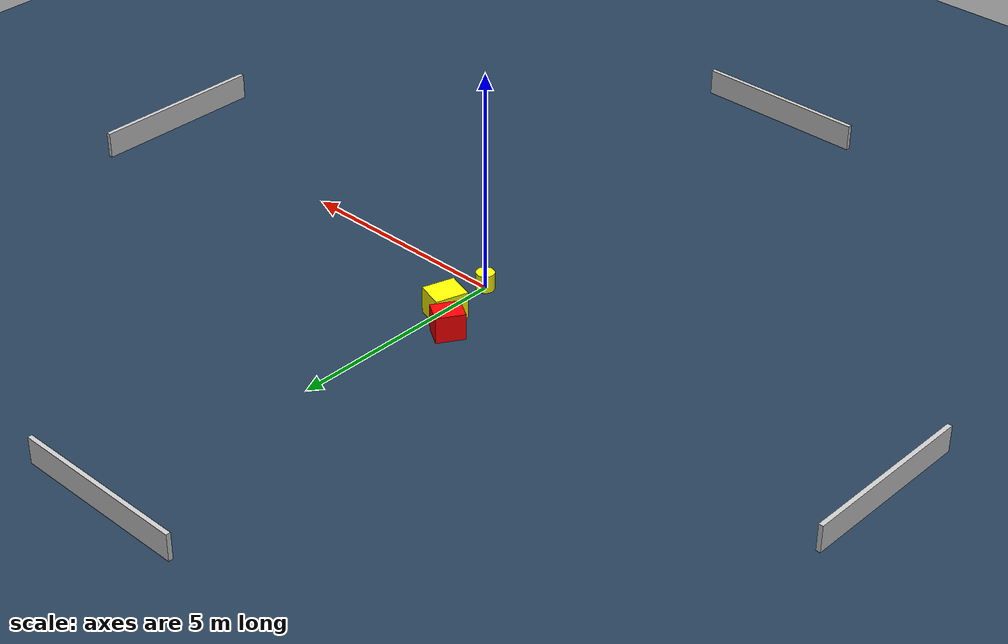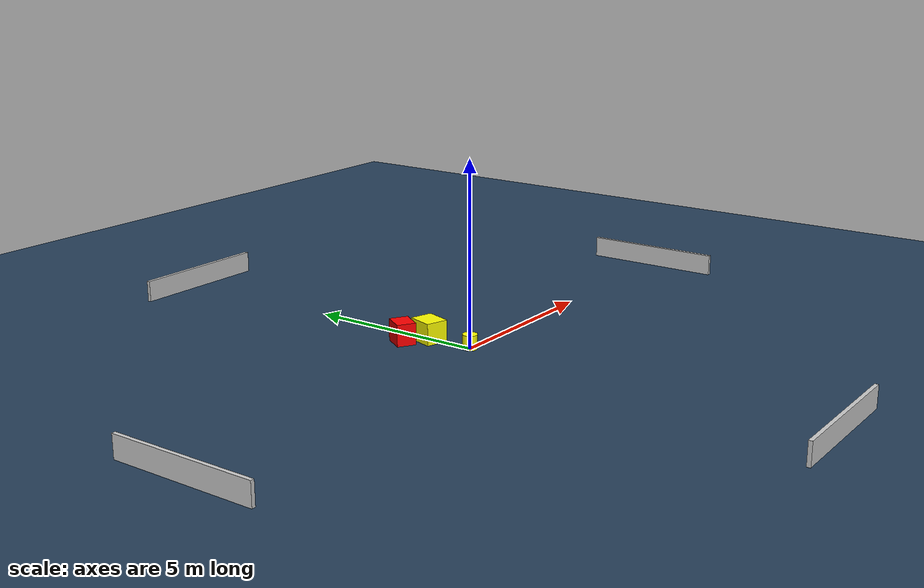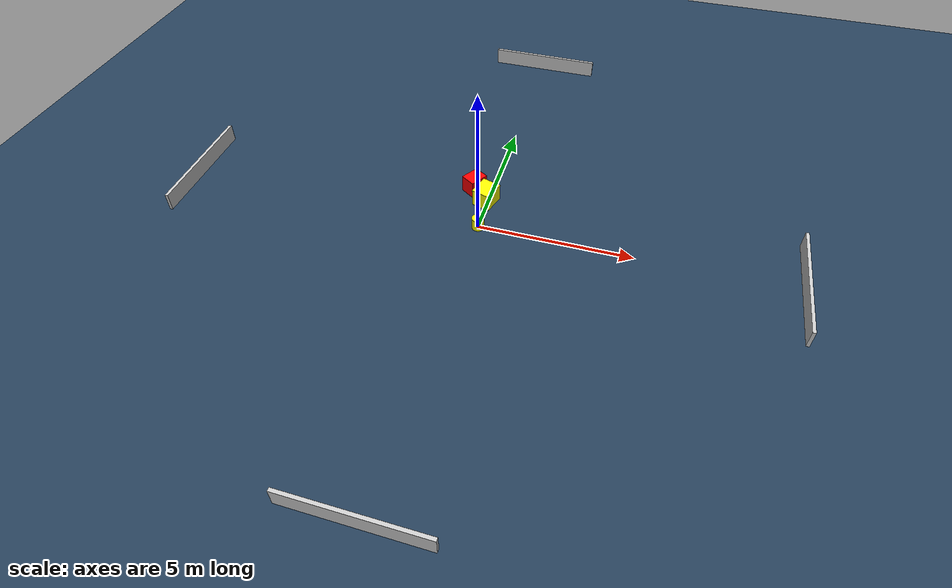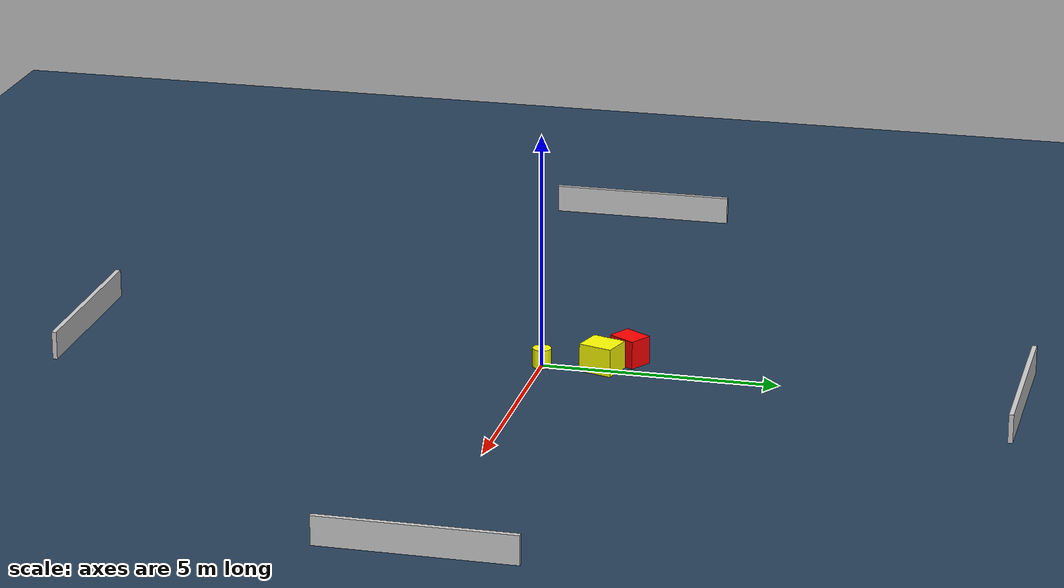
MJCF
<?xml version="1.0" ?>
<mujoco model="generated_environment">
  <option timestep="0.01" integrator="RK4" cone="elliptic"/>
  <default>
    <geom density="1"/>
  </default>
  <asset>
    <texture builtin="gradient" height="3072" name="skybox" rgb1="0.3 0.5 0.7" rgb2="0 0 0" type="skybox" width="512"/>
    <texture builtin="checker" height="300" name="groundplane" rgb1="0.2 0.3 0.4" rgb2="0.1 0.2 0.3" type="2d" width="300"/>
    <material name="groundplane" reflectance="0.2" texrepeat="5 5" texture="groundplane"/>
  </asset>
  <worldbody>
    <light dir="0 0 -1" directional="true" pos="0 0 1.5"/>
    <geom condim="3" friction="0.5 0.005 0.001" material="groundplane" name="floor" pos="0 0 0" size="0 0 0.05" type="plane"/>
    <body name="walls">
      <geom name="wall_1" condim="4" pos="-10.0 0.0 0.3" rgba="0.800000011920929 0.800000011920929 0.800000011920929 1.0" size="0.05 2.0 0.3" type="box"/>
      <geom name="wall_2" condim="4" pos="10.0 0.0 0.3" rgba="0.800000011920929 0.800000011920929 0.800000011920929 1.0" size="0.05 2.0 0.3" type="box"/>
      <geom name="wall_3" condim="4" pos="0.0 -10.0 0.3" rgba="0.800000011920929 0.800000011920929 0.800000011920929 1.0" size="2.0 0.05 0.3" type="box"/>
      <geom name="wall_4" condim="4" pos="0.0 10.0 0.3" rgba="0.800000011920929 0.800000011920929 0.800000011920929 1.0" size="2.0 0.05 0.3" type="box"/>
    </body>
    <body name="robot">
      <joint name="joint_x" type="slide" pos="0 0 0" axis="1 0 0"/>
      <joint name="joint_y" type="slide" pos="0 0 0" axis="0 1 0"/>
      <geom name="robot" type="cylinder" pos="0.0 0.0 0.2" size="0.2 0.2 0.0" mass="5.0" friction="1.0 0.005 0.0001" condim="4" rgba="1.0 1.0 0.0 1.0"/>
    </body>
    <body name="obstacle_1_movable">
      <geom name="obstacle_1_movable" condim="4" pos="-0.08249537855715651 1.2659880815021356 0.3" euler="0 0 342.7238144388634" friction="0.0 0.005 0.001" rgba="1.0 1.0 0.0 1.0" size="0.31491841074838267 0.36650292731634504 0.3" type="box" mass="0.1"/>
      <joint type="free"/>
    </body>
    <body name="obstacle_2_static">
      <geom name="obstacle_2_static" condim="4" pos="-0.6217184595529073 1.7361172851718891 0.3" euler="0 0 237.8683698936692" friction="0.0 0.005 0.001" rgba="1.0 0.0 0.0 1.0" size="0.31772480462441083 0.2606188705762478 0.3" type="box"/>
    </body>
  </worldbody>
  <actuator>
    <motor name="actuator_x" joint="joint_x" gear="1" ctrlrange="-1 1"/>
    <motor name="actuator_y" joint="joint_y" gear="1" ctrlrange="-1 1"/>
  </actuator>
</mujoco>
